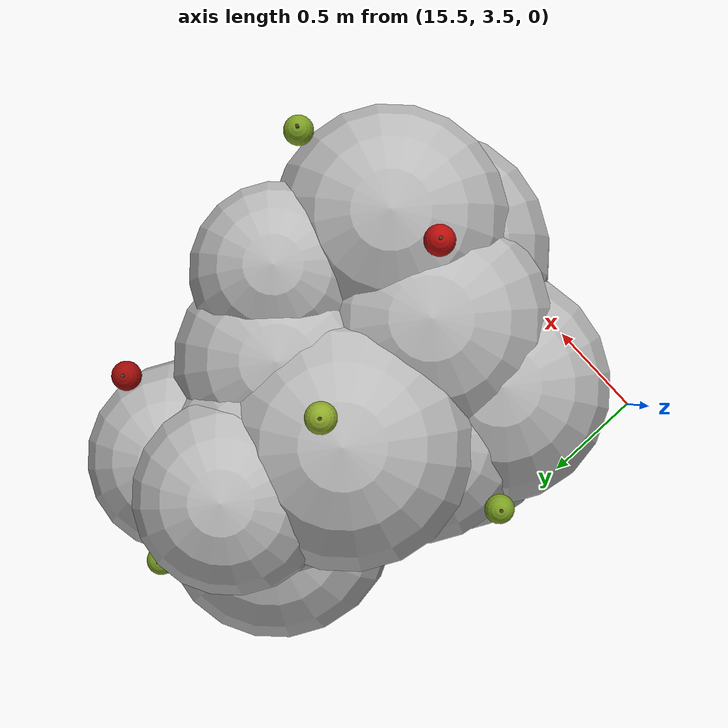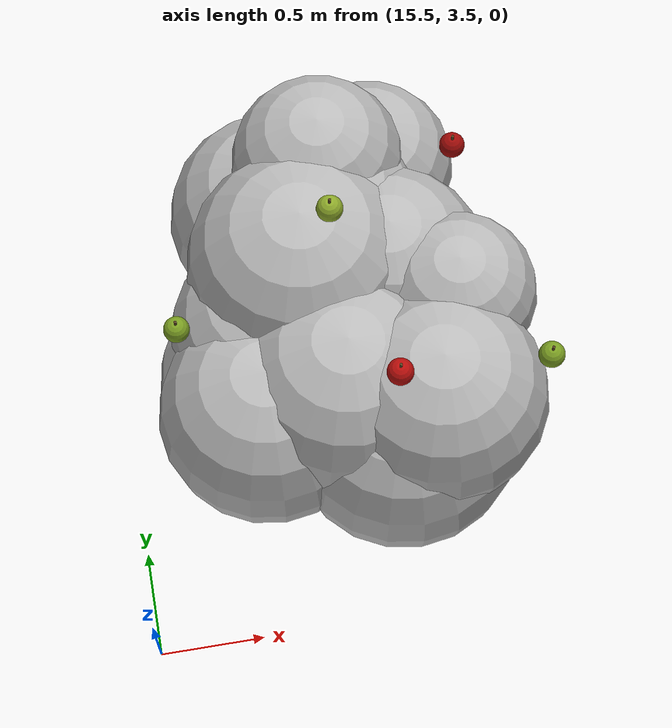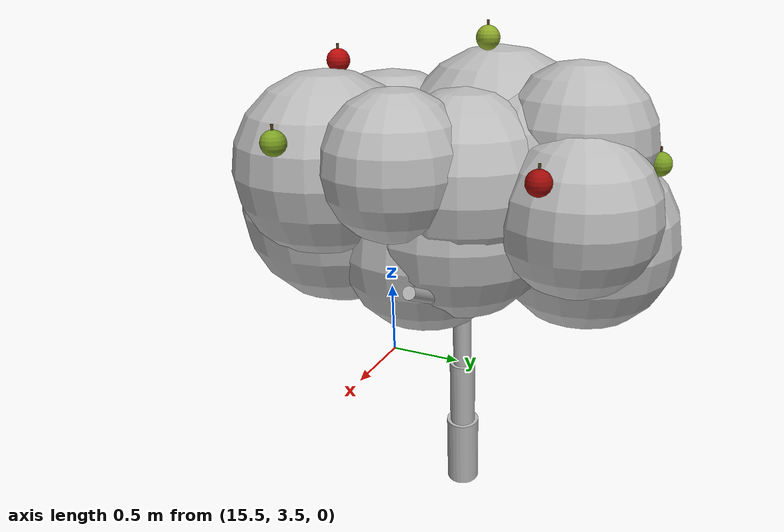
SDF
<sdf version="1.6">
 <world name="default">
  <model name="tree_r4_t15">
   <static>true</static>
   <link name="tree_r4_t15_trunk0">
    <pose>16.6269 4.5165 0.1783 -0.0185 0.0574 0</pose>
    <collision name="tree_r4_t15_trunk0_c">
     <geometry><cylinder><radius>0.0835</radius><length>0.3781</length></cylinder></geometry>
    </collision>
    <visual name="tree_r4_t15_trunk0_v">
     <geometry><cylinder><radius>0.0835</radius><length>0.3781</length></cylinder></geometry>
     <material>
      <script>
       <uri>model://orchard/materials/scripts</uri>
       <uri>model://orchard/materials/textures</uri>
       <name>Orchard/Bark</name>
      </script>
     </material>
    </visual>
   </link>
   <link name="tree_r4_t15_trunk1">
    <pose>16.6473 4.5231 0.5350 -0.0185 0.0574 0</pose>
    <visual name="tree_r4_t15_trunk1_v">
     <geometry><cylinder><radius>0.0652</radius><length>0.3781</length></cylinder></geometry>
     <material>
      <script>
       <uri>model://orchard/materials/scripts</uri>
       <uri>model://orchard/materials/textures</uri>
       <name>Orchard/Bark</name>
      </script>
     </material>
    </visual>
   </link>
   <link name="tree_r4_t15_trunk2">
    <pose>16.6678 4.5297 0.8917 -0.0185 0.0574 0</pose>
    <visual name="tree_r4_t15_trunk2_v">
     <geometry><cylinder><radius>0.0468</radius><length>0.3781</length></cylinder></geometry>
     <material>
      <script>
       <uri>model://orchard/materials/scripts</uri>
       <uri>model://orchard/materials/textures</uri>
       <name>Orchard/Bark</name>
      </script>
     </material>
    </visual>
   </link>
   <link name="tree_r4_t15_br0">
    <pose>16.9888 4.5457 1.2300 0.0000 1.0959 0.0408</pose>
    <visual name="tree_r4_t15_br0_v">
     <geometry><cylinder><radius>0.0293</radius><length>0.6994</length></cylinder></geometry>
     <material>
      <script>
       <uri>model://orchard/materials/scripts</uri>
       <uri>model://orchard/materials/textures</uri>
       <name>Orchard/Bark</name>
      </script>
     </material>
    </visual>
   </link>
   <link name="tree_r4_t15_br1">
    <pose>16.7240 4.7358 1.3434 0.0000 0.6505 1.3478</pose>
    <visual name="tree_r4_t15_br1_v">
     <geometry><cylinder><radius>0.0337</radius><length>0.6869</length></cylinder></geometry>
     <material>
      <script>
       <uri>model://orchard/materials/scripts</uri>
       <uri>model://orchard/materials/textures</uri>
       <name>Orchard/Bark</name>
      </script>
     </material>
    </visual>
   </link>
   <link name="tree_r4_t15_br2">
    <pose>16.4490 4.7257 1.2327 0.0000 1.0731 2.4420</pose>
    <visual name="tree_r4_t15_br2_v">
     <geometry><cylinder><radius>0.0298</radius><length>0.6814</length></cylinder></geometry>
     <material>
      <script>
       <uri>model://orchard/materials/scripts</uri>
       <uri>model://orchard/materials/textures</uri>
       <name>Orchard/Bark</name>
      </script>
     </material>
    </visual>
   </link>
   <link name="tree_r4_t15_br3">
    <pose>16.5083 4.3840 1.2619 0.0000 0.8667 3.8616</pose>
    <visual name="tree_r4_t15_br3_v">
     <geometry><cylinder><radius>0.0254</radius><length>0.5926</length></cylinder></geometry>
     <material>
      <script>
       <uri>model://orchard/materials/scripts</uri>
       <uri>model://orchard/materials/textures</uri>
       <name>Orchard/Bark</name>
      </script>
     </material>
    </visual>
   </link>
   <link name="tree_r4_t15_br4">
    <pose>16.8166 4.2708 1.2866 0.0000 0.9401 5.1987</pose>
    <visual name="tree_r4_t15_br4_v">
     <geometry><cylinder><radius>0.0293</radius><length>0.7344</length></cylinder></geometry>
     <material>
      <script>
       <uri>model://orchard/materials/scripts</uri>
       <uri>model://orchard/materials/textures</uri>
       <name>Orchard/Bark</name>
      </script>
     </material>
    </visual>
   </link>
   <link name="tree_r4_t15_fol0">
    <pose>16.5227 5.0283 1.8857 0 0 0</pose>
    <visual name="tree_r4_t15_fol0_v">
     <geometry><sphere><radius>0.3671</radius></sphere></geometry>
     <material>
      <script>
       <uri>model://orchard/materials/scripts</uri>
       <uri>model://orchard/materials/textures</uri>
       <name>Orchard/Foliage2</name>
      </script>
     </material>
    </visual>
   </link>
   <link name="tree_r4_t15_fol1">
    <pose>16.7046 3.8973 1.5169 0 0 0</pose>
    <visual name="tree_r4_t15_fol1_v">
     <geometry><sphere><radius>0.4903</radius></sphere></geometry>
     <material>
      <script>
       <uri>model://orchard/materials/scripts</uri>
       <uri>model://orchard/materials/textures</uri>
       <name>Orchard/Foliage2</name>
      </script>
     </material>
    </visual>
   </link>
   <link name="tree_r4_t15_fol2">
    <pose>16.7276 4.3739 1.3859 0 0 0</pose>
    <visual name="tree_r4_t15_fol2_v">
     <geometry><sphere><radius>0.4296</radius></sphere></geometry>
     <material>
      <script>
       <uri>model://orchard/materials/scripts</uri>
       <uri>model://orchard/materials/textures</uri>
       <name>Orchard/Foliage0</name>
      </script>
     </material>
    </visual>
   </link>
   <link name="tree_r4_t15_fol3">
    <pose>16.4532 4.5197 1.5345 0 0 0</pose>
    <visual name="tree_r4_t15_fol3_v">
     <geometry><sphere><radius>0.3618</radius></sphere></geometry>
     <material>
      <script>
       <uri>model://orchard/materials/scripts</uri>
       <uri>model://orchard/materials/textures</uri>
       <name>Orchard/Foliage0</name>
      </script>
     </material>
    </visual>
   </link>
   <link name="tree_r4_t15_fol4">
    <pose>16.9988 4.3618 1.8245 0 0 0</pose>
    <visual name="tree_r4_t15_fol4_v">
     <geometry><sphere><radius>0.3401</radius></sphere></geometry>
     <material>
      <script>
       <uri>model://orchard/materials/scripts</uri>
       <uri>model://orchard/materials/textures</uri>
       <name>Orchard/Foliage2</name>
      </script>
     </material>
    </visual>
   </link>
   <link name="tree_r4_t15_fol5">
    <pose>16.5137 4.8384 1.7189 0 0 0</pose>
    <visual name="tree_r4_t15_fol5_v">
     <geometry><sphere><radius>0.4417</radius></sphere></geometry>
     <material>
      <script>
       <uri>model://orchard/materials/scripts</uri>
       <uri>model://orchard/materials/textures</uri>
       <name>Orchard/Foliage1</name>
      </script>
     </material>
    </visual>
   </link>
   <link name="tree_r4_t15_fol6">
    <pose>16.2076 4.4026 1.6124 0 0 0</pose>
    <visual name="tree_r4_t15_fol6_v">
     <geometry><sphere><radius>0.4142</radius></sphere></geometry>
     <material>
      <script>
       <uri>model://orchard/materials/scripts</uri>
       <uri>model://orchard/materials/textures</uri>
       <name>Orchard/Foliage2</name>
      </script>
     </material>
    </visual>
   </link>
   <link name="tree_r4_t15_fol7">
    <pose>16.7494 4.5786 1.7159 0 0 0</pose>
    <visual name="tree_r4_t15_fol7_v">
     <geometry><sphere><radius>0.4254</radius></sphere></geometry>
     <material>
      <script>
       <uri>model://orchard/materials/scripts</uri>
       <uri>model://orchard/materials/textures</uri>
       <name>Orchard/Foliage3</name>
      </script>
     </material>
    </visual>
   </link>
   <link name="tree_r4_t15_fol8">
    <pose>16.8592 3.9441 1.7490 0 0 0</pose>
    <visual name="tree_r4_t15_fol8_v">
     <geometry><sphere><radius>0.4517</radius></sphere></geometry>
     <material>
      <script>
       <uri>model://orchard/materials/scripts</uri>
       <uri>model://orchard/materials/textures</uri>
       <name>Orchard/Foliage3</name>
      </script>
     </material>
    </visual>
   </link>
   <link name="tree_r4_t15_fol9">
    <pose>16.3850 4.6032 1.8026 0 0 0</pose>
    <visual name="tree_r4_t15_fol9_v">
     <geometry><sphere><radius>0.4857</radius></sphere></geometry>
     <material>
      <script>
       <uri>model://orchard/materials/scripts</uri>
       <uri>model://orchard/materials/textures</uri>
       <name>Orchard/Foliage0</name>
      </script>
     </material>
    </visual>
   </link>
   <link name="tree_r4_t15_fol10">
    <pose>16.7127 4.5321 1.5035 0 0 0</pose>
    <visual name="tree_r4_t15_fol10_v">
     <geometry><sphere><radius>0.4558</radius></sphere></geometry>
     <material>
      <script>
       <uri>model://orchard/materials/scripts</uri>
       <uri>model://orchard/materials/textures</uri>
       <name>Orchard/Foliage3</name>
      </script>
     </material>
    </visual>
   </link>
   <link name="tree_r4_t15_fol11">
    <pose>16.7563 5.1044 1.6301 0 0 0</pose>
    <visual name="tree_r4_t15_fol11_v">
     <geometry><sphere><radius>0.3716</radius></sphere></geometry>
     <material>
      <script>
       <uri>model://orchard/materials/scripts</uri>
       <uri>model://orchard/materials/textures</uri>
       <name>Orchard/Foliage3</name>
      </script>
     </material>
    </visual>
   </link>
   <link name="tree_r4_t15_fol12">
    <pose>16.2003 4.2748 1.3783 0 0 0</pose>
    <visual name="tree_r4_t15_fol12_v">
     <geometry><sphere><radius>0.4889</radius></sphere></geometry>
     <material>
      <script>
       <uri>model://orchard/materials/scripts</uri>
       <uri>model://orchard/materials/textures</uri>
       <name>Orchard/Foliage1</name>
      </script>
     </material>
    </visual>
   </link>
   <link name="tree_r4_t15_fol13">
    <pose>16.3257 5.0460 1.3787 0 0 0</pose>
    <visual name="tree_r4_t15_fol13_v">
     <geometry><sphere><radius>0.4673</radius></sphere></geometry>
     <material>
      <script>
       <uri>model://orchard/materials/scripts</uri>
       <uri>model://orchard/materials/textures</uri>
       <name>Orchard/Foliage1</name>
      </script>
     </material>
    </visual>
   </link>
   <link name="tree_r4_t15_fol14">
    <pose>16.4982 4.0911 1.6857 0 0 0</pose>
    <visual name="tree_r4_t15_fol14_v">
     <geometry><sphere><radius>0.4788</radius></sphere></geometry>
     <material>
      <script>
       <uri>model://orchard/materials/scripts</uri>
       <uri>model://orchard/materials/textures</uri>
       <name>Orchard/Foliage3</name>
      </script>
     </material>
    </visual>
   </link>
   <link name="tree_r4_t15_fol15">
    <pose>16.1573 4.0631 1.5448 0 0 0</pose>
    <visual name="tree_r4_t15_fol15_v">
     <geometry><sphere><radius>0.4675</radius></sphere></geometry>
     <material>
      <script>
       <uri>model://orchard/materials/scripts</uri>
       <uri>model://orchard/materials/textures</uri>
       <name>Orchard/Foliage2</name>
      </script>
     </material>
    </visual>
   </link>
   <link name="tree_r4_t15_ap0">
    <pose>16.5045 4.5863 2.3240 0 0 0</pose>
    <visual name="tree_r4_t15_ap0_v">
     <geometry><sphere><radius>0.0550</radius></sphere></geometry>
     <material>
      <ambient>0.220 0.264 0.064 1.00</ambient>
      <diffuse>0.550 0.660 0.160 1.00</diffuse>
      <specular>0.45 0.35 0.32 1</specular>
     </material>
    </visual>
   </link>
   <link name="tree_r4_t15_st0">
    <pose>16.5045 4.5863 2.3762 0 0 0</pose>
    <visual name="tree_r4_t15_st0_v">
     <geometry><cylinder><radius>0.0060</radius><length>0.0500</length></cylinder></geometry>
     <material><ambient>0.128 0.096 0.040 1.00</ambient><diffuse>0.320 0.240 0.100 1.00</diffuse></material>
    </visual>
   </link>
   <link name="tree_r4_t15_ap1">
    <pose>17.3142 3.9704 1.9574 0 0 0</pose>
    <visual name="tree_r4_t15_ap1_v">
     <geometry><sphere><radius>0.0550</radius></sphere></geometry>
     <material>
      <ambient>0.192 0.248 0.052 1.00</ambient>
      <diffuse>0.480 0.620 0.130 1.00</diffuse>
      <specular>0.45 0.35 0.32 1</specular>
     </material>
    </visual>
   </link>
   <link name="tree_r4_t15_st1">
    <pose>17.3142 3.9704 2.0096 0 0 0</pose>
    <visual name="tree_r4_t15_st1_v">
     <geometry><cylinder><radius>0.0060</radius><length>0.0500</length></cylinder></geometry>
     <material><ambient>0.128 0.096 0.040 1.00</ambient><diffuse>0.320 0.240 0.100 1.00</diffuse></material>
    </visual>
   </link>
   <link name="tree_r4_t15_ap2">
    <pose>15.8278 4.3618 1.8752 0 0 0</pose>
    <visual name="tree_r4_t15_ap2_v">
     <geometry><sphere><radius>0.0550</radius></sphere></geometry>
     <material>
      <ambient>0.192 0.248 0.052 1.00</ambient>
      <diffuse>0.480 0.620 0.130 1.00</diffuse>
      <specular>0.45 0.35 0.32 1</specular>
     </material>
    </visual>
   </link>
   <link name="tree_r4_t15_st2">
    <pose>15.8278 4.3618 1.9274 0 0 0</pose>
    <visual name="tree_r4_t15_st2_v">
     <geometry><cylinder><radius>0.0060</radius><length>0.0500</length></cylinder></geometry>
     <material><ambient>0.128 0.096 0.040 1.00</ambient><diffuse>0.320 0.240 0.100 1.00</diffuse></material>
    </visual>
   </link>
   <link name="tree_r4_t15_ap3">
    <pose>16.6713 3.8980 2.2114 0 0 0</pose>
    <visual name="tree_r4_t15_ap3_v">
     <geometry><sphere><radius>0.0550</radius></sphere></geometry>
     <material>
      <ambient>0.288 0.020 0.016 1.00</ambient>
      <diffuse>0.720 0.050 0.040 1.00</diffuse>
      <specular>0.45 0.35 0.32 1</specular>
     </material>
    </visual>
   </link>
   <link name="tree_r4_t15_st3">
    <pose>16.6713 3.8980 2.2636 0 0 0</pose>
    <visual name="tree_r4_t15_st3_v">
     <geometry><cylinder><radius>0.0060</radius><length>0.0500</length></cylinder></geometry>
     <material><ambient>0.128 0.096 0.040 1.00</ambient><diffuse>0.320 0.240 0.100 1.00</diffuse></material>
    </visual>
   </link>
   <link name="tree_r4_t15_ap4">
    <pose>17.1054 5.0290 1.8532 0 0 0</pose>
    <visual name="tree_r4_t15_ap4_v">
     <geometry><sphere><radius>0.0550</radius></sphere></geometry>
     <material>
      <ambient>0.248 0.016 0.012 1.00</ambient>
      <diffuse>0.620 0.040 0.030 1.00</diffuse>
      <specular>0.45 0.35 0.32 1</specular>
     </material>
    </visual>
   </link>
   <link name="tree_r4_t15_st4">
    <pose>17.1054 5.0290 1.9054 0 0 0</pose>
    <visual name="tree_r4_t15_st4_v">
     <geometry><cylinder><radius>0.0060</radius><length>0.0500</length></cylinder></geometry>
     <material><ambient>0.128 0.096 0.040 1.00</ambient><diffuse>0.320 0.240 0.100 1.00</diffuse></material>
    </visual>
   </link>
   <link name="tree_r4_t15_ap5">
    <pose>16.5262 5.3972 1.8267 0 0 0</pose>
    <visual name="tree_r4_t15_ap5_v">
     <geometry><sphere><radius>0.0550</radius></sphere></geometry>
     <material>
      <ambient>0.192 0.248 0.052 1.00</ambient>
      <diffuse>0.480 0.620 0.130 1.00</diffuse>
      <specular>0.45 0.35 0.32 1</specular>
     </material>
    </visual>
   </link>
   <link name="tree_r4_t15_st5">
    <pose>16.5262 5.3972 1.8789 0 0 0</pose>
    <visual name="tree_r4_t15_st5_v">
     <geometry><cylinder><radius>0.0060</radius><length>0.0500</length></cylinder></geometry>
     <material><ambient>0.128 0.096 0.040 1.00</ambient><diffuse>0.320 0.240 0.100 1.00</diffuse></material>
    </visual>
   </link>
  </model>
 </world>
</sdf>
